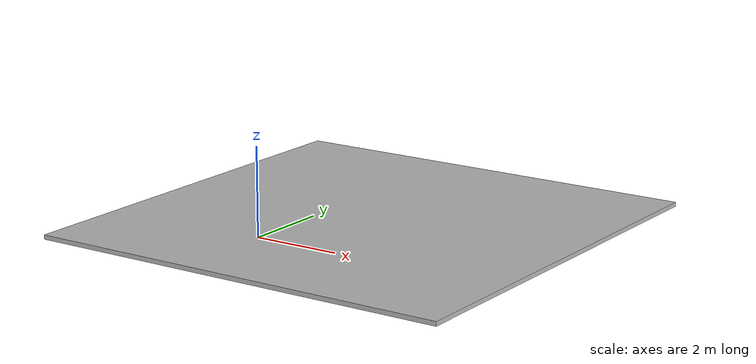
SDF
<?xml version="1.0"?>
<sdf version="1.4">
  <world name="default">
    <scene>
      <ambient>0 0 0 1</ambient>
      <shadows>0</shadows>
      <grid>0</grid>
      <background>0.7 0.7 0.7 1</background>
    </scene>
    <gui fullscreen='0'>
      <camera name='user_camera'>
        <pose>-6 2.65 12 0 1.0471975512 0</pose>
        <view_controller>orbit</view_controller>
      </camera>
    </gui>
    <include>
      <uri>model://sun</uri>
    </include>
    <model name="ground">
      <pose>1 2.675 -.1 0 0 0</pose>
      <static>1</static>
      <link name="ground">
        <collision name="ground_coll">
          <geometry>
            <box>
              <size>10 10 .1</size>
            </box>
          </geometry>
          <surface>
            <contact>
              <ode/>
            </contact>
          </surface>
        </collision>
        <visual name="ground_vis">
          <geometry>
            <box>
              <size>10 10 .1</size>
            </box>
          </geometry>
          <material>
            <script>
              <uri>model://turtlebot3_linetrace/course/course.material</uri>
              <name>course</name>
            </script>
          </material>
        </visual>
      </link>
    </model>
  </world>
</sdf>
